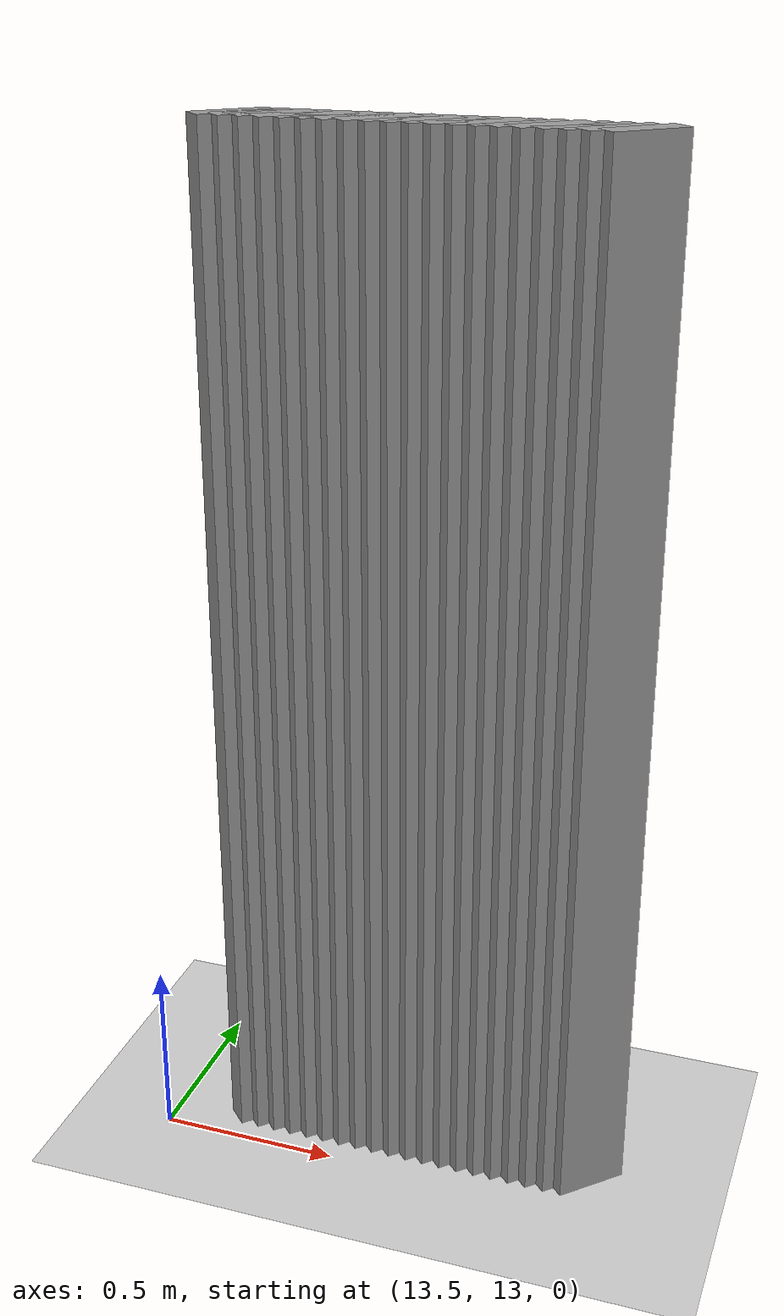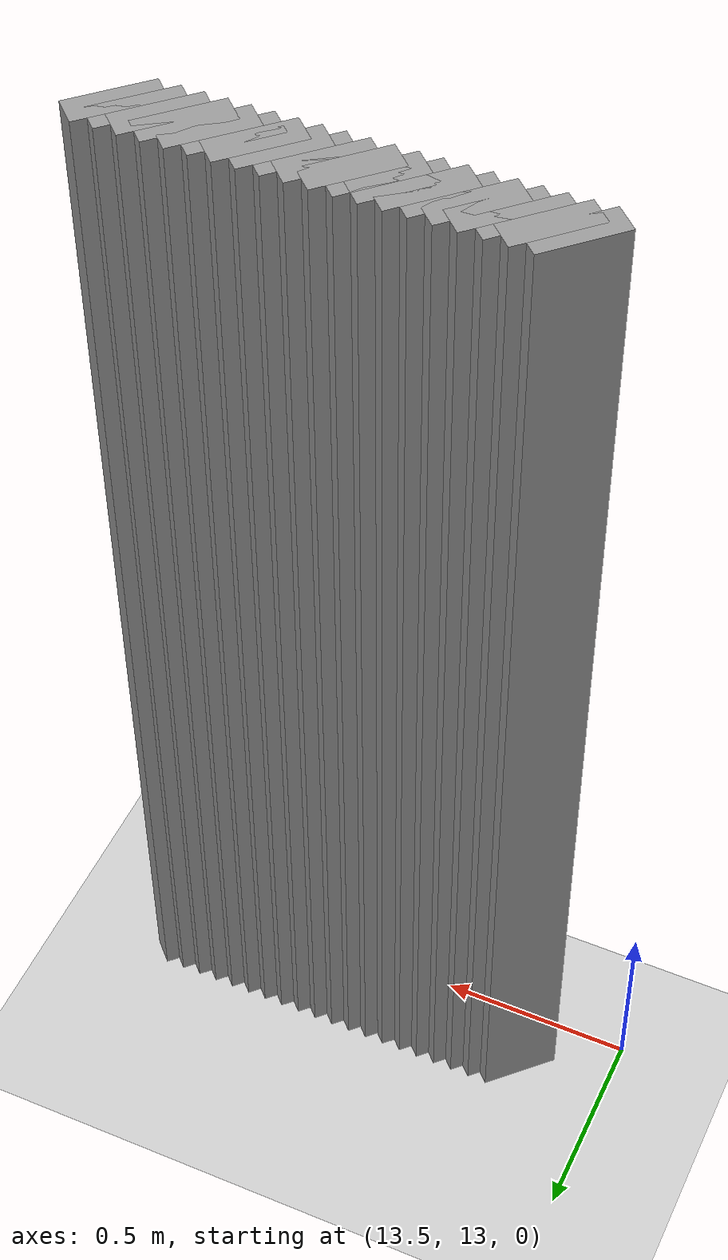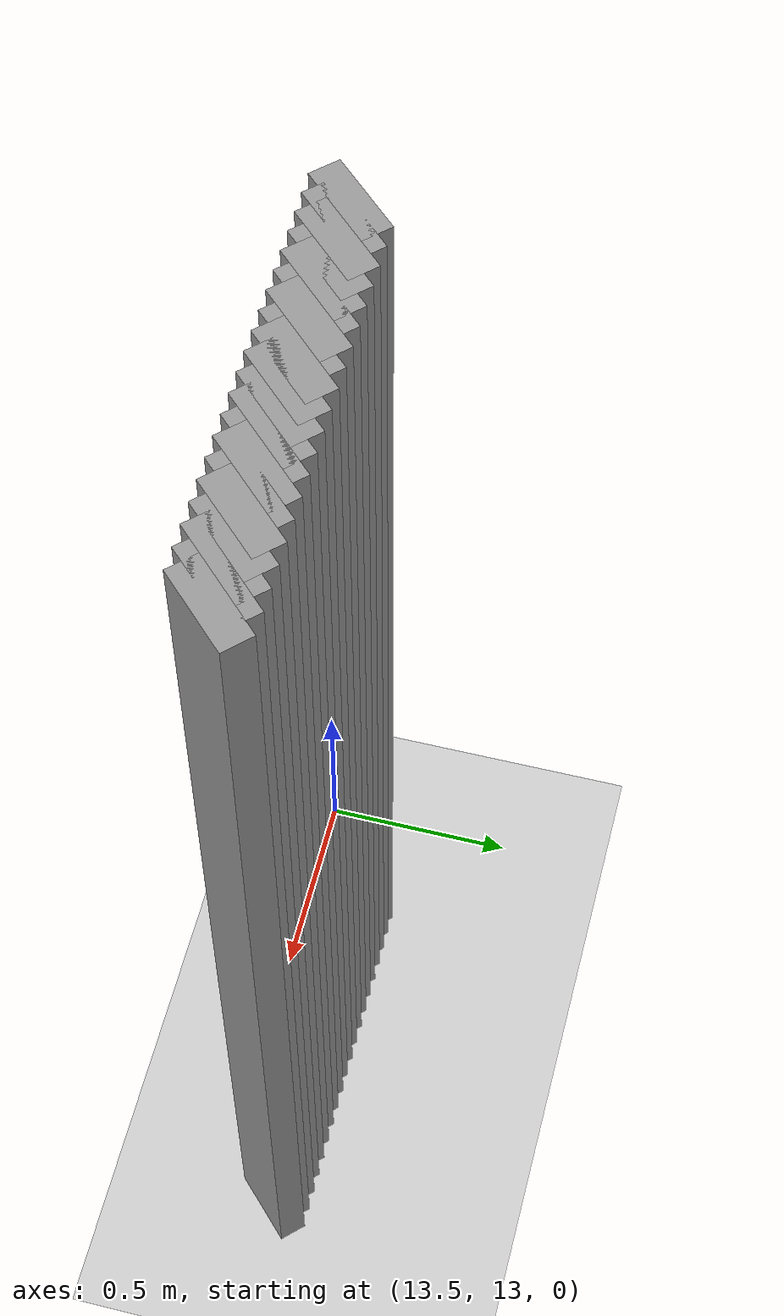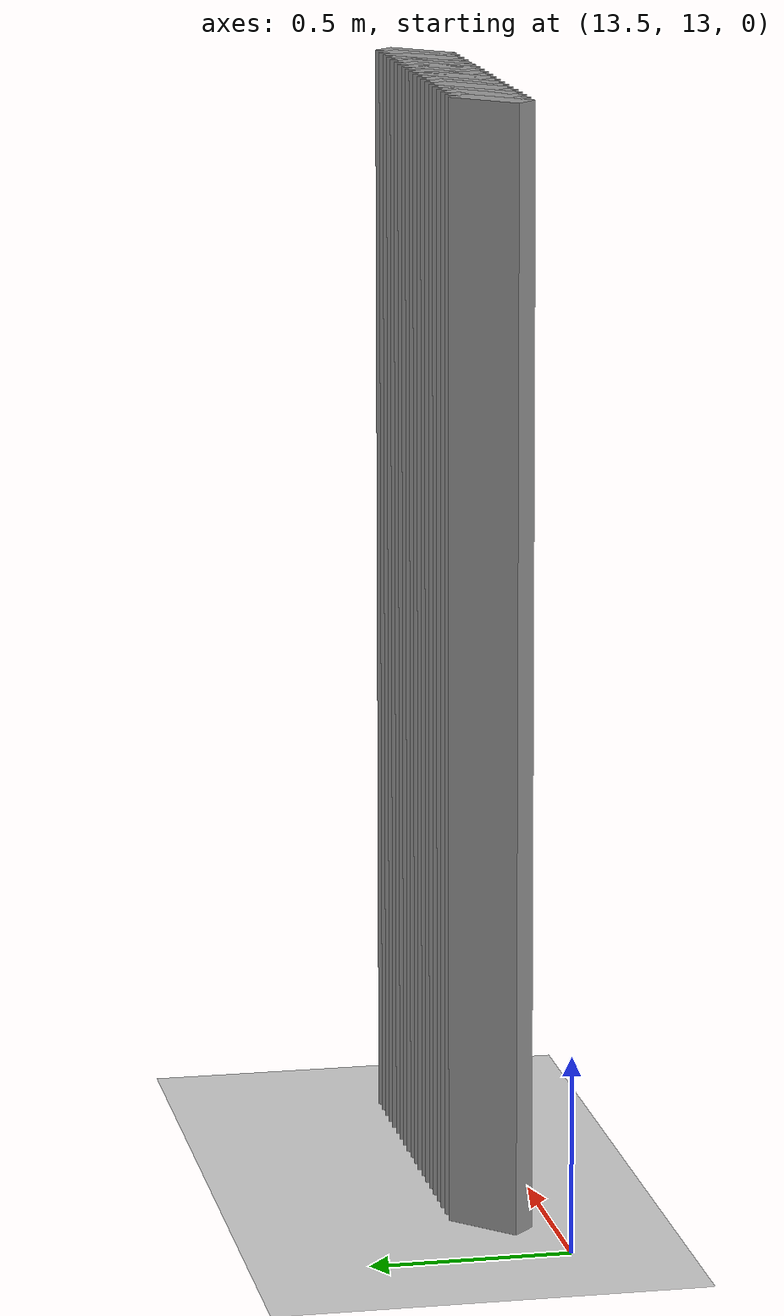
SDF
<sdf version="1.5">
 <world name="default">
  <include><uri>model://ground_plane</uri></include>
  <include><uri>model://sun</uri></include>
  <model name="grey_wall_2069">
   <static>1</static>
   <link name="link">
    <pose>13.75 13.15  1.4 0 0 -0.785398163397</pose>
    <collision name="collision"><geometry><box><size>0.0707106781187 .2  2.8</size></box></geometry></collision>
    <visual name="visual">
     <cast_shadows>0</cast_shadows>
     <geometry><box><size>0.0707106781187 .2  2.8</size></box></geometry>
     <material>
      <script>
       <uri>model://grey_wall/materials/scripts</uri>
       <uri>model://grey_wall/materials/textures</uri>
       <name>vrc/grey_wall</name>
      </script>
     </material>
    </visual>
   </link>
  </model>
  <model name="grey_wall_2070">
   <static>1</static>
   <link name="link">
    <pose>13.8 13.15  1.4 0 0 -0.785398163397</pose>
    <collision name="collision"><geometry><box><size>0.0707106781187 .2  2.8</size></box></geometry></collision>
    <visual name="visual">
     <cast_shadows>0</cast_shadows>
     <geometry><box><size>0.0707106781187 .2  2.8</size></box></geometry>
     <material>
      <script>
       <uri>model://grey_wall/materials/scripts</uri>
       <uri>model://grey_wall/materials/textures</uri>
       <name>vrc/grey_wall</name>
      </script>
     </material>
    </visual>
   </link>
  </model>
  <model name="grey_wall_2071">
   <static>1</static>
   <link name="link">
    <pose>13.85 13.15  1.4 0 0 -0.785398163397</pose>
    <collision name="collision"><geometry><box><size>0.0707106781187 .2  2.8</size></box></geometry></collision>
    <visual name="visual">
     <cast_shadows>0</cast_shadows>
     <geometry><box><size>0.0707106781187 .2  2.8</size></box></geometry>
     <material>
      <script>
       <uri>model://grey_wall/materials/scripts</uri>
       <uri>model://grey_wall/materials/textures</uri>
       <name>vrc/grey_wall</name>
      </script>
     </material>
    </visual>
   </link>
  </model>
  <model name="grey_wall_2072">
   <static>1</static>
   <link name="link">
    <pose>13.9 13.15  1.4 0 0 -0.785398163397</pose>
    <collision name="collision"><geometry><box><size>0.0707106781187 .2  2.8</size></box></geometry></collision>
    <visual name="visual">
     <cast_shadows>0</cast_shadows>
     <geometry><box><size>0.0707106781187 .2  2.8</size></box></geometry>
     <material>
      <script>
       <uri>model://grey_wall/materials/scripts</uri>
       <uri>model://grey_wall/materials/textures</uri>
       <name>vrc/grey_wall</name>
      </script>
     </material>
    </visual>
   </link>
  </model>
  <model name="grey_wall_2073">
   <static>1</static>
   <link name="link">
    <pose>13.95 13.15  1.4 0 0 -0.785398163397</pose>
    <collision name="collision"><geometry><box><size>0.0707106781187 .2  2.8</size></box></geometry></collision>
    <visual name="visual">
     <cast_shadows>0</cast_shadows>
     <geometry><box><size>0.0707106781187 .2  2.8</size></box></geometry>
     <material>
      <script>
       <uri>model://grey_wall/materials/scripts</uri>
       <uri>model://grey_wall/materials/textures</uri>
       <name>vrc/grey_wall</name>
      </script>
     </material>
    </visual>
   </link>
  </model>
  <model name="grey_wall_2074">
   <static>1</static>
   <link name="link">
    <pose>14.0 13.15  1.4 0 0 -0.785398163397</pose>
    <collision name="collision"><geometry><box><size>0.0707106781187 .2  2.8</size></box></geometry></collision>
    <visual name="visual">
     <cast_shadows>0</cast_shadows>
     <geometry><box><size>0.0707106781187 .2  2.8</size></box></geometry>
     <material>
      <script>
       <uri>model://grey_wall/materials/scripts</uri>
       <uri>model://grey_wall/materials/textures</uri>
       <name>vrc/grey_wall</name>
      </script>
     </material>
    </visual>
   </link>
  </model>
  <model name="grey_wall_2075">
   <static>1</static>
   <link name="link">
    <pose>14.05 13.15  1.4 0 0 -0.785398163397</pose>
    <collision name="collision"><geometry><box><size>0.0707106781187 .2  2.8</size></box></geometry></collision>
    <visual name="visual">
     <cast_shadows>0</cast_shadows>
     <geometry><box><size>0.0707106781187 .2  2.8</size></box></geometry>
     <material>
      <script>
       <uri>model://grey_wall/materials/scripts</uri>
       <uri>model://grey_wall/materials/textures</uri>
       <name>vrc/grey_wall</name>
      </script>
     </material>
    </visual>
   </link>
  </model>
  <model name="grey_wall_2076">
   <static>1</static>
   <link name="link">
    <pose>14.1 13.15  1.4 0 0 -0.785398163397</pose>
    <collision name="collision"><geometry><box><size>0.0707106781187 .2  2.8</size></box></geometry></collision>
    <visual name="visual">
     <cast_shadows>0</cast_shadows>
     <geometry><box><size>0.0707106781187 .2  2.8</size></box></geometry>
     <material>
      <script>
       <uri>model://grey_wall/materials/scripts</uri>
       <uri>model://grey_wall/materials/textures</uri>
       <name>vrc/grey_wall</name>
      </script>
     </material>
    </visual>
   </link>
  </model>
  <model name="grey_wall_2077">
   <static>1</static>
   <link name="link">
    <pose>14.15 13.15  1.4 0 0 -0.785398163397</pose>
    <collision name="collision"><geometry><box><size>0.0707106781187 .2  2.8</size></box></geometry></collision>
    <visual name="visual">
     <cast_shadows>0</cast_shadows>
     <geometry><box><size>0.0707106781187 .2  2.8</size></box></geometry>
     <material>
      <script>
       <uri>model://grey_wall/materials/scripts</uri>
       <uri>model://grey_wall/materials/textures</uri>
       <name>vrc/grey_wall</name>
      </script>
     </material>
    </visual>
   </link>
  </model>
  <model name="grey_wall_2078">
   <static>1</static>
   <link name="link">
    <pose>14.2 13.15  1.4 0 0 -0.785398163397</pose>
    <collision name="collision"><geometry><box><size>0.0707106781187 .2  2.8</size></box></geometry></collision>
    <visual name="visual">
     <cast_shadows>0</cast_shadows>
     <geometry><box><size>0.0707106781187 .2  2.8</size></box></geometry>
     <material>
      <script>
       <uri>model://grey_wall/materials/scripts</uri>
       <uri>model://grey_wall/materials/textures</uri>
       <name>vrc/grey_wall</name>
      </script>
     </material>
    </visual>
   </link>
  </model>
  <model name="grey_wall_2079">
   <static>1</static>
   <link name="link">
    <pose>14.25 13.15  1.4 0 0 -0.785398163397</pose>
    <collision name="collision"><geometry><box><size>0.0707106781187 .2  2.8</size></box></geometry></collision>
    <visual name="visual">
     <cast_shadows>0</cast_shadows>
     <geometry><box><size>0.0707106781187 .2  2.8</size></box></geometry>
     <material>
      <script>
       <uri>model://grey_wall/materials/scripts</uri>
       <uri>model://grey_wall/materials/textures</uri>
       <name>vrc/grey_wall</name>
      </script>
     </material>
    </visual>
   </link>
  </model>
  <model name="grey_wall_2080">
   <static>1</static>
   <link name="link">
    <pose>14.3 13.15  1.4 0 0 -0.785398163397</pose>
    <collision name="collision"><geometry><box><size>0.0707106781187 .2  2.8</size></box></geometry></collision>
    <visual name="visual">
     <cast_shadows>0</cast_shadows>
     <geometry><box><size>0.0707106781187 .2  2.8</size></box></geometry>
     <material>
      <script>
       <uri>model://grey_wall/materials/scripts</uri>
       <uri>model://grey_wall/materials/textures</uri>
       <name>vrc/grey_wall</name>
      </script>
     </material>
    </visual>
   </link>
  </model>
  <model name="grey_wall_2081">
   <static>1</static>
   <link name="link">
    <pose>14.35 13.15  1.4 0 0 -0.785398163397</pose>
    <collision name="collision"><geometry><box><size>0.0707106781187 .2  2.8</size></box></geometry></collision>
    <visual name="visual">
     <cast_shadows>0</cast_shadows>
     <geometry><box><size>0.0707106781187 .2  2.8</size></box></geometry>
     <material>
      <script>
       <uri>model://grey_wall/materials/scripts</uri>
       <uri>model://grey_wall/materials/textures</uri>
       <name>vrc/grey_wall</name>
      </script>
     </material>
    </visual>
   </link>
  </model>
  <model name="grey_wall_2082">
   <static>1</static>
   <link name="link">
    <pose>14.4 13.15  1.4 0 0 -0.785398163397</pose>
    <collision name="collision"><geometry><box><size>0.0707106781187 .2  2.8</size></box></geometry></collision>
    <visual name="visual">
     <cast_shadows>0</cast_shadows>
     <geometry><box><size>0.0707106781187 .2  2.8</size></box></geometry>
     <material>
      <script>
       <uri>model://grey_wall/materials/scripts</uri>
       <uri>model://grey_wall/materials/textures</uri>
       <name>vrc/grey_wall</name>
      </script>
     </material>
    </visual>
   </link>
  </model>
  <model name="grey_wall_2083">
   <static>1</static>
   <link name="link">
    <pose>14.45 13.15  1.4 0 0 -0.785398163397</pose>
    <collision name="collision"><geometry><box><size>0.0707106781187 .2  2.8</size></box></geometry></collision>
    <visual name="visual">
     <cast_shadows>0</cast_shadows>
     <geometry><box><size>0.0707106781187 .2  2.8</size></box></geometry>
     <material>
      <script>
       <uri>model://grey_wall/materials/scripts</uri>
       <uri>model://grey_wall/materials/textures</uri>
       <name>vrc/grey_wall</name>
      </script>
     </material>
    </visual>
   </link>
  </model>
  <model name="grey_wall_2084">
   <static>1</static>
   <link name="link">
    <pose>14.5 13.15  1.4 0 0 -0.785398163397</pose>
    <collision name="collision"><geometry><box><size>0.0707106781187 .2  2.8</size></box></geometry></collision>
    <visual name="visual">
     <cast_shadows>0</cast_shadows>
     <geometry><box><size>0.0707106781187 .2  2.8</size></box></geometry>
     <material>
      <script>
       <uri>model://grey_wall/materials/scripts</uri>
       <uri>model://grey_wall/materials/textures</uri>
       <name>vrc/grey_wall</name>
      </script>
     </material>
    </visual>
   </link>
  </model>
  <model name="grey_wall_2085">
   <static>1</static>
   <link name="link">
    <pose>14.55 13.15  1.4 0 0 -0.785398163397</pose>
    <collision name="collision"><geometry><box><size>0.0707106781187 .2  2.8</size></box></geometry></collision>
    <visual name="visual">
     <cast_shadows>0</cast_shadows>
     <geometry><box><size>0.0707106781187 .2  2.8</size></box></geometry>
     <material>
      <script>
       <uri>model://grey_wall/materials/scripts</uri>
       <uri>model://grey_wall/materials/textures</uri>
       <name>vrc/grey_wall</name>
      </script>
     </material>
    </visual>
   </link>
  </model>
  <model name="grey_wall_2086">
   <static>1</static>
   <link name="link">
    <pose>14.6 13.15  1.4 0 0 -0.785398163397</pose>
    <collision name="collision"><geometry><box><size>0.0707106781187 .2  2.8</size></box></geometry></collision>
    <visual name="visual">
     <cast_shadows>0</cast_shadows>
     <geometry><box><size>0.0707106781187 .2  2.8</size></box></geometry>
     <material>
      <script>
       <uri>model://grey_wall/materials/scripts</uri>
       <uri>model://grey_wall/materials/textures</uri>
       <name>vrc/grey_wall</name>
      </script>
     </material>
    </visual>
   </link>
  </model>
  <model name="grey_wall_2087">
   <static>1</static>
   <link name="link">
    <pose>14.65 13.15  1.4 0 0 -0.785398163397</pose>
    <collision name="collision"><geometry><box><size>0.0707106781187 .2  2.8</size></box></geometry></collision>
    <visual name="visual">
     <cast_shadows>0</cast_shadows>
     <geometry><box><size>0.0707106781187 .2  2.8</size></box></geometry>
     <material>
      <script>
       <uri>model://grey_wall/materials/scripts</uri>
       <uri>model://grey_wall/materials/textures</uri>
       <name>vrc/grey_wall</name>
      </script>
     </material>
    </visual>
   </link>
  </model>
  <model name="grey_wall_2088">
   <static>1</static>
   <link name="link">
    <pose>14.7 13.15  1.4 0 0 -0.785398163397</pose>
    <collision name="collision"><geometry><box><size>0.0707106781187 .2  2.8</size></box></geometry></collision>
    <visual name="visual">
     <cast_shadows>0</cast_shadows>
     <geometry><box><size>0.0707106781187 .2  2.8</size></box></geometry>
     <material>
      <script>
       <uri>model://grey_wall/materials/scripts</uri>
       <uri>model://grey_wall/materials/textures</uri>
       <name>vrc/grey_wall</name>
      </script>
     </material>
    </visual>
   </link>
  </model>
 </world>
</sdf>
